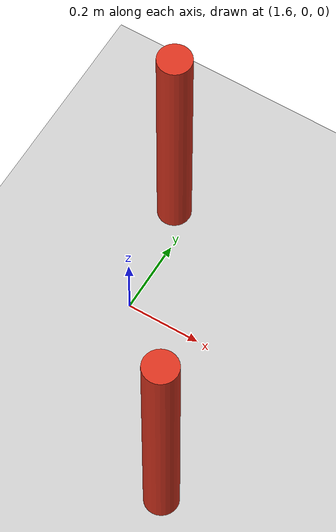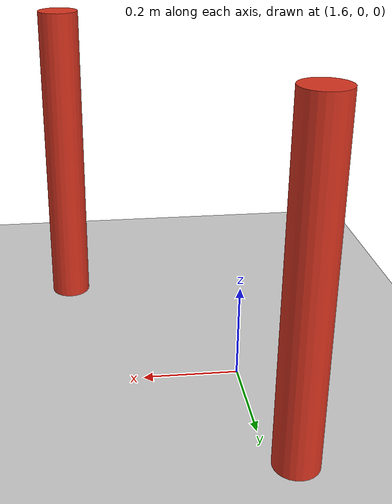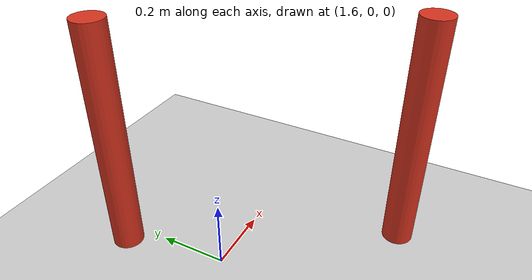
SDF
<?xml version="1.0"?>
<sdf version="1.9">
  <world name="follow_me_leg_like_pillars_offset">
    <plugin filename="libignition-gazebo-physics-system.so"
            name="ignition::gazebo::systems::Physics"/>
    <plugin filename="libignition-gazebo-user-commands-system.so"
            name="ignition::gazebo::systems::UserCommands"/>
    <plugin filename="libignition-gazebo-scene-broadcaster-system.so"
            name="ignition::gazebo::systems::SceneBroadcaster"/>
    <plugin filename="libignition-gazebo-sensors-system.so"
            name="ignition::gazebo::systems::Sensors">
      <!-- FortressではLiDAR出力をGazebo Transportへ出し、ROS側へはros_gz_bridgeで接続する。 -->
      <render_engine>ogre2</render_engine>
    </plugin>

    <physics name="default_physics" type="ode">
      <max_step_size>0.001</max_step_size>
      <real_time_update_rate>1000</real_time_update_rate>
      <real_time_factor>1.0</real_time_factor>
    </physics>

    <scene>
      <ambient>0.45 0.45 0.45 1</ambient>
      <background>0.7 0.7 0.7 1</background>
      <shadows>true</shadows>
    </scene>

    <light type="directional" name="sun">
      <cast_shadows>true</cast_shadows>
      <pose>0 0 10 0 0 0</pose>
      <diffuse>0.8 0.8 0.8 1</diffuse>
      <specular>0.2 0.2 0.2 1</specular>
      <attenuation>
        <range>1000</range>
        <constant>0.9</constant>
        <linear>0.01</linear>
        <quadratic>0.001</quadratic>
      </attenuation>
      <direction>-0.5 0.1 -0.9</direction>
    </light>

    <model name="ground_plane">
      <static>true</static>
      <link name="link">
        <collision name="collision">
          <geometry>
            <plane>
              <normal>0 0 1</normal>
              <size>100 100</size>
            </plane>
          </geometry>
        </collision>
        <visual name="visual">
          <geometry>
            <plane>
              <normal>0 0 1</normal>
              <size>100 100</size>
            </plane>
          </geometry>
          <material>
            <ambient>0.8 0.8 0.8 1</ambient>
            <diffuse>0.8 0.8 0.8 1</diffuse>
          </material>
        </visual>
      </link>
    </model>

    <model name="leg_like_pillar_left_near">
      <static>true</static>
      <!-- 左右非対称に置き、片脚だけが柱に近づく瞬間を作る。 -->
      <pose>1.55 0.30 0.35 0 0 0</pose>
      <link name="link">
        <collision name="collision">
          <geometry>
            <cylinder>
              <radius>0.045</radius>
              <length>0.70</length>
            </cylinder>
          </geometry>
        </collision>
        <visual name="visual">
          <!-- 536870913 = GUI表示bit(1) + LiDAR専用bit(0x20000000)。柱はGUIにも/scanにも出す。 -->
          <visibility_flags>536870913</visibility_flags>
          <geometry>
            <cylinder>
              <radius>0.045</radius>
              <length>0.70</length>
            </cylinder>
          </geometry>
          <material>
            <ambient>0.85 0.20 0.12 1</ambient>
            <diffuse>0.85 0.20 0.12 1</diffuse>
          </material>
        </visual>
      </link>
    </model>

    <model name="leg_like_pillar_right_far">
      <static>true</static>
      <pose>1.95 -0.42 0.35 0 0 0</pose>
      <link name="link">
        <collision name="collision">
          <geometry>
            <cylinder>
              <radius>0.045</radius>
              <length>0.70</length>
            </cylinder>
          </geometry>
        </collision>
        <visual name="visual">
          <visibility_flags>536870913</visibility_flags>
          <geometry>
            <cylinder>
              <radius>0.045</radius>
              <length>0.70</length>
            </cylinder>
          </geometry>
          <material>
            <ambient>0.85 0.20 0.12 1</ambient>
            <diffuse>0.85 0.20 0.12 1</diffuse>
          </material>
        </visual>
      </link>
    </model>
  </world>
</sdf>
